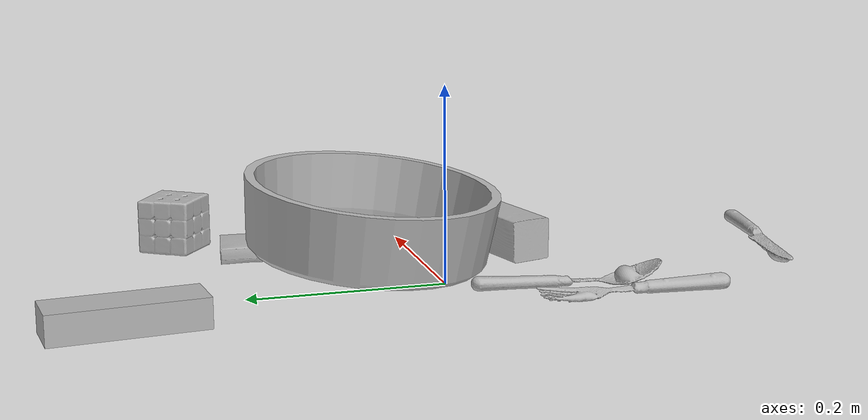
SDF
<sdf version="1.4">
  <world name="default">
    <light name="light1" type="point">
      <pose>0 0 1 0 0 0</pose>
      <diffuse>3 3 3 1</diffuse>
      <specular>3 3 3 1</specular>
    </light>
    <light name="light2" type="point">
      <pose>0 0.5 2 0 0 0</pose>
      <diffuse>1 1 1 1</diffuse>
      <specular>1 1 1 1</specular>
    </light>
    <light name="light3" type="point">
      <pose>0 0.5 2 0 0 0</pose>
      <diffuse>3 3 3 1</diffuse>
      <specular>3 3 3 1</specular>
    </light>
    <scene>
      <ambient>0.7 0.7 0.7</ambient>
    </scene>
    <model name="box11">
      <link name="link_box11">
        <collision name="default">
          <geometry>
            <mesh>
              <uri>model://jenga/collision_meshes/collision.obj</uri>
              <scale>1.0 1.0 1.0</scale>
            </mesh>
          </geometry>
          <surface>
            <friction>
              <ode>
                <mu>0.5</mu>
                <mu2>0.5</mu2>
              </ode>
            </friction>
          <contact>
        <ode>
            <max_vel>0</max_vel>
            <min_depth>0.0001</min_depth>
            <kp>1e8</kp>
        </ode>
    </contact></surface>
        </collision>
        <visual name="default">
          <geometry>
            <mesh>
              <uri>model://jenga/visual_meshes/visual.dae</uri>
              <scale>1.0 1.0 1.0</scale>
            </mesh>
          </geometry>
        </visual>
        <inertial>
          <mass>0.22063912451267242</mass>
          <pose>-2.502855807051674e-07 -0.00010250011109746993 -4.0923405322246253e-05 0.0 -7.34215461761844e-07 0.0</pose>
          <inertia>
            <ixx>6.1056206e-05</ixx>
            <iyy>0.00041371517</iyy>
            <izz>0.00044167612</izz>
            <ixy>0</ixy>
            <ixz>0</ixz>
            <iyz>0</iyz>
          </inertia>
        </inertial>
      </link>
      <pose>-0.06654149293899536 0.3190516531467438 0.01499999687075615 1.53111208839742e-08 -3.5677885130982194e-09 -1.469481457512808</pose>
    </model>
    <model name="box12">
      <link name="link_box12">
        <collision name="default">
          <geometry>
            <mesh>
              <uri>model://sugar_box/collision_meshes/collision.obj</uri>
              <scale>0.5 0.5 0.5</scale>
            </mesh>
          </geometry>
          <surface>
            <friction>
              <ode>
                <mu>0.5</mu>
                <mu2>0.5</mu2>
              </ode>
            </friction>
          <contact>
        <ode>
            <max_vel>0</max_vel>
            <min_depth>0.0001</min_depth>
            <kp>1e8</kp>
        </ode>
    </contact></surface>
        </collision>
        <visual name="default">
          <geometry>
            <mesh>
              <uri>model://sugar_box/visual_meshes/visual.dae</uri>
              <scale>0.5 0.5 0.5</scale>
            </mesh>
          </geometry>
        </visual>
        <inertial>
          <mass>0.053318966180086136</mass>
          <pose>0.0005171863595023751 1.924554817378521e-05 -0.00018182402709499002 -0.00040462627129080113 0.001050663522124822 0.0026153787889376494</pose>
          <inertia>
            <ixx>1.1106302e-05</ixx>
            <iyy>3.5897858e-05</iyy>
            <izz>4.2974014e-05</izz>
            <ixy>0</ixy>
            <ixz>0</ixz>
            <iyz>0</iyz>
          </inertia>
        </inertial>
      </link>
      <pose>0.16862332820892334 0.11168313026428223 0.01151159219443798 0.02667320090781079 -0.022191560886298776 -0.3520050238178148</pose>
    </model>
    <model name="box13">
      <link name="link_box13">
        <collision name="default">
          <geometry>
            <mesh>
              <uri>model://gelatin_box/collision_meshes/collision.obj</uri>
              <scale>1.0 1.0 1.0</scale>
            </mesh>
          </geometry>
          <surface>
            <friction>
              <ode>
                <mu>0.5</mu>
                <mu2>0.5</mu2>
              </ode>
            </friction>
          <contact>
        <ode>
            <max_vel>0</max_vel>
            <min_depth>0.0001</min_depth>
            <kp>1e8</kp>
        </ode>
    </contact></surface>
        </collision>
        <visual name="default">
          <geometry>
            <mesh>
              <uri>model://gelatin_box/visual_meshes/visual.dae</uri>
              <scale>1.0 1.0 1.0</scale>
            </mesh>
          </geometry>
        </visual>
        <inertial>
          <mass>0.19111748039722443</mass>
          <pose>0.0004319618456065655 0.00011156871914863586 -0.00036403207923285663 -0.0010503719765995955 -0.004755818690324038 0.01644055947160125</pose>
          <inertia>
            <ixx>0.00013491335</ixx>
            <iyy>9.63679e-05</iyy>
            <izz>0.00020536821</izz>
            <ixy>0</ixy>
            <ixz>0</ixz>
            <iyz>0</iyz>
          </inertia>
        </inertial>
      </link>
      <pose>0.24257168173789978 -0.04514482617378235 0.01516831573098898 0.005597469565677102 -0.007304577403489078 -1.6320395480557839</pose>
    </model>
    <model name="box21">
      <link name="link_box21">
        <collision name="default">
          <geometry>
            <mesh>
              <uri>model://pudding_box/collision_meshes/collision.obj</uri>
              <scale>0.5 0.5 0.5</scale>
            </mesh>
          </geometry>
          <surface>
            <friction>
              <ode>
                <mu>0.5</mu>
                <mu2>0.5</mu2>
              </ode>
            </friction>
          <contact>
        <ode>
            <max_vel>0</max_vel>
            <min_depth>0.0001</min_depth>
            <kp>1e8</kp>
        </ode>
    </contact></surface>
        </collision>
        <visual name="default">
          <geometry>
            <mesh>
              <uri>model://pudding_box/visual_meshes/visual.dae</uri>
              <scale>0.5 0.5 0.5</scale>
            </mesh>
          </geometry>
        </visual>
        <inertial>
          <mass>0.037507444620132446</mass>
          <pose>0.00024474109522998333 0.0004033942532259971 -0.0002594413817860186 0.00521310221980129 -0.006603800139852783 0.020079832606434308</pose>
          <inertia>
            <ixx>1.0600058e-05</ixx>
            <iyy>7.131795e-06</iyy>
            <izz>1.5653754e-05</izz>
            <ixy>0</ixy>
            <ixz>0</ixz>
            <iyz>0</iyz>
          </inertia>
        </inertial>
      </link>
      <pose>0.1607329398393631 0.17816729843616486 0.009862902574241161 0.02234847604772259 -0.01139175705051957 -1.7115194870512596</pose>
    </model>
    <model name="box22">
      <link name="link_box22">
        <collision name="default">
          <geometry>
            <mesh>
              <uri>model://rubiks_cube/collision_meshes/collision.obj</uri>
              <scale>1.0 1.0 1.0</scale>
            </mesh>
          </geometry>
          <surface>
            <friction>
              <ode>
                <mu>0.5</mu>
                <mu2>0.5</mu2>
              </ode>
            </friction>
          <contact>
        <ode>
            <max_vel>0</max_vel>
            <min_depth>0.0001</min_depth>
            <kp>1e8</kp>
        </ode>
    </contact></surface>
        </collision>
        <visual name="default">
          <geometry>
            <mesh>
              <uri>model://rubiks_cube/visual_meshes/visual.dae</uri>
              <scale>1.0 1.0 1.0</scale>
            </mesh>
          </geometry>
        </visual>
        <inertial>
          <mass>0.19412381947040558</mass>
          <pose>2.6721041649580002e-05 5.2569666877388954e-05 -7.264316082000732e-06 -0.05467327462967597 -0.09814157667114887 -0.034454893398498845</pose>
          <inertia>
            <ixx>0.000107266445</ixx>
            <iyy>0.0001067662</iyy>
            <izz>0.00010815532</izz>
            <ixy>0</ixy>
            <ixz>0</ixz>
            <iyz>0</iyz>
          </inertia>
        </inertial>
      </link>
      <pose>0.21796122193336487 0.24108800292015076 0.028678931295871735 -5.310463248289366e-06 -2.009621984706321e-06 -2.151328126309546</pose>
    </model>
    <model name="box23">
      <link name="link_box23">
        <collision name="default">
          <geometry>
            <mesh>
              <uri>model://wood_block/collision_meshes/collision.obj</uri>
              <scale>0.5 0.5 0.5</scale>
            </mesh>
          </geometry>
          <surface>
            <friction>
              <ode>
                <mu>0.5</mu>
                <mu2>0.5</mu2>
              </ode>
            </friction>
          <contact>
        <ode>
            <max_vel>0</max_vel>
            <min_depth>0.0001</min_depth>
            <kp>1e8</kp>
        </ode>
    </contact></surface>
        </collision>
        <visual name="default">
          <geometry>
            <mesh>
              <uri>model://wood_block/visual_meshes/visual.dae</uri>
              <scale>0.5 0.5 0.5</scale>
            </mesh>
          </geometry>
        </visual>
        <inertial>
          <mass>0.12021861970424652</mass>
          <pose>-2.9066577553749084e-06 -0.000285404734313488 0.00013204291462898254 -0.05220783851692058 -0.005192695246339916 -0.006861377900732038</pose>
          <inertia>
            <ixx>4.0217674e-05</ixx>
            <iyy>0.00012704768</iyy>
            <izz>0.00012657243</izz>
            <ixy>0</ixy>
            <ixz>0</ixz>
            <iyz>0</iyz>
          </inertia>
        </inertial>
      </link>
      <pose>0.10774689167737961 -0.0977301225066185 0.022629261016845703 -0.005208428098411614 0.005718733910586723 0.25734297259722655</pose>
    </model>
    <model name="plate1">
      <link name="link_plate1">
        <collision name="default">
          <geometry>
            <mesh>
              <uri>model://pan_tefal/collision_meshes/collision.obj</uri>
              <scale>1.0 1.0 1.0</scale>
            </mesh>
          </geometry>
          <surface>
            <friction>
              <ode>
                <mu>0.5</mu>
                <mu2>0.5</mu2>
              </ode>
            </friction>
          <contact>
        <ode>
            <max_vel>0</max_vel>
            <min_depth>0.0001</min_depth>
            <kp>1e8</kp>
        </ode>
    </contact></surface>
        </collision>
        <visual name="default">
          <geometry>
            <mesh>
              <uri>model://pan_tefal/visual_meshes/visual.dae</uri>
              <scale>1.0 1.0 1.0</scale>
            </mesh>
          </geometry>
        </visual>
        <inertial>
          <mass>1.1174349784851074</mass>
          <pose>-0.0001800186582840979 3.278696021880023e-05 -0.00851493701338768 0.0008190242272949328 -0.00033013996347192336 -0.33186114310704434</pose>
          <inertia>
            <ixx>0.0077136005</ixx>
            <iyy>0.0077633304</iyy>
            <izz>0.014199255</izz>
            <ixy>0</ixy>
            <ixz>0</ixz>
            <iyz>0</iyz>
          </inertia>
        </inertial>
      </link>
      <pose>0.08818856626749039 0.05514684319496155 0.05083834379911423 -0.10100243860356065 -0.05927352931916768 2.0215424090162584</pose>
    </model>
    <model name="silverware1">
      <link name="link_silverware1">
        <collision name="default">
          <geometry>
            <mesh>
              <uri>model://spoon/collision_meshes/collision.obj</uri>
              <scale>1.0 1.0 1.0</scale>
            </mesh>
          </geometry>
          <surface>
            <friction>
              <ode>
                <mu>0.5</mu>
                <mu2>0.5</mu2>
              </ode>
            </friction>
          <contact>
        <ode>
            <max_vel>0</max_vel>
            <min_depth>0.0001</min_depth>
            <kp>1e8</kp>
        </ode>
    </contact></surface>
        </collision>
        <visual name="default">
          <geometry>
            <mesh>
              <uri>model://spoon/visual_meshes/visual.dae</uri>
              <scale>1.0 1.0 1.0</scale>
            </mesh>
          </geometry>
        </visual>
        <inertial>
          <mass>0.03790392354130745</mass>
          <pose>-0.005526311695575714 -0.0016034170985221863 -0.0007271655485965312 0.03521845899657386 -0.039065840459698326 0.006150612465639116</pose>
          <inertia>
            <ixx>2.1082776e-06</ixx>
            <iyy>0.00014422317</iyy>
            <izz>0.00014526285</izz>
            <ixy>0</ixy>
            <ixz>0</ixz>
            <iyz>0</iyz>
          </inertia>
        </inertial>
      </link>
      <pose>-0.040925998240709305 -0.1147899180650711 0.00838526338338852 0.0067317974474602246 0.026893009510786027 -1.6342489448131727</pose>
    </model>
    <model name="silverware2">
      <link name="link_silverware2">
        <collision name="default">
          <geometry>
            <mesh>
              <uri>model://fork/collision_meshes/collision.obj</uri>
              <scale>1.0 1.0 1.0</scale>
            </mesh>
          </geometry>
          <surface>
            <friction>
              <ode>
                <mu>0.5</mu>
                <mu2>0.5</mu2>
              </ode>
            </friction>
          <contact>
        <ode>
            <max_vel>0</max_vel>
            <min_depth>0.0001</min_depth>
            <kp>1e8</kp>
        </ode>
    </contact></surface>
        </collision>
        <visual name="default">
          <geometry>
            <mesh>
              <uri>model://fork/visual_meshes/visual.dae</uri>
              <scale>1.0 1.0 1.0</scale>
            </mesh>
          </geometry>
        </visual>
        <inertial>
          <mass>0.029004188254475594</mass>
          <pose>-0.02957005612552166 0.0004658824182115495 0.00032188621116802096 -0.013551880215526314 -0.010977843078655252 0.014453906566097012</pose>
          <inertia>
            <ixx>1.0167608e-06</ixx>
            <iyy>7.572158e-05</iyy>
            <izz>7.617634e-05</izz>
            <ixy>0</ixy>
            <ixz>0</ixz>
            <iyz>0</iyz>
          </inertia>
        </inertial>
      </link>
      <pose>-0.08825971931219101 -0.16761630773544312 0.005739348009228706 -0.18680054763330256 0.02434980989113053 1.5282581071761394</pose>
    </model>
    <model name="silverware3">
      <link name="link_silverware3">
        <collision name="default">
          <geometry>
            <mesh>
              <uri>model://knife/collision_meshes/collision.obj</uri>
              <scale>1.0 1.0 1.0</scale>
            </mesh>
          </geometry>
          <surface>
            <friction>
              <ode>
                <mu>0.5</mu>
                <mu2>0.5</mu2>
              </ode>
            </friction>
          <contact>
        <ode>
            <max_vel>0</max_vel>
            <min_depth>0.0001</min_depth>
            <kp>1e8</kp>
        </ode>
    </contact></surface>
        </collision>
        <visual name="default">
          <geometry>
            <mesh>
              <uri>model://knife/visual_meshes/visual.dae</uri>
              <scale>1.0 1.0 1.0</scale>
            </mesh>
          </geometry>
        </visual>
        <inertial>
          <mass>0.015800314024090767</mass>
          <pose>-0.023785250261425972 0.0015275126788765192 5.0620288675418124e-05 0.07305498599936577 0.01724841842216061 -0.0074098211805850795</pose>
          <inertia>
            <ixx>4.48477e-07</ixx>
            <iyy>6.0702252e-05</iyy>
            <izz>6.0846694e-05</izz>
            <ixy>0</ixy>
            <ixz>0</ixz>
            <iyz>0</iyz>
          </inertia>
        </inertial>
      </link>
      <pose>0.06067910045385361 -0.373088002204895 0.007946575991809368 -0.023844183445354494 -0.014543246219722831 2.9668129207689304</pose>
    </model>
  <physics type="ode">
      <max_contacts>50</max_contacts>
      <ode>
        <solver>
          <type>quick</type>
          <iters>75</iters>
        </solver>
        <constraints>
          <contact_max_correcting_vel>0</contact_max_correcting_vel>
          <contact_surface_layer>0</contact_surface_layer>
        </constraints>
      </ode>
    </physics></world>
</sdf>
